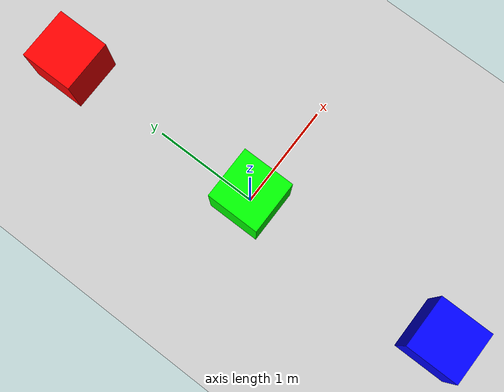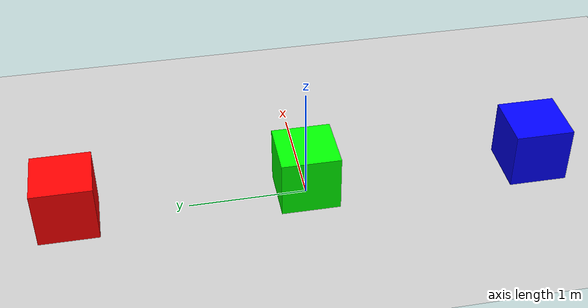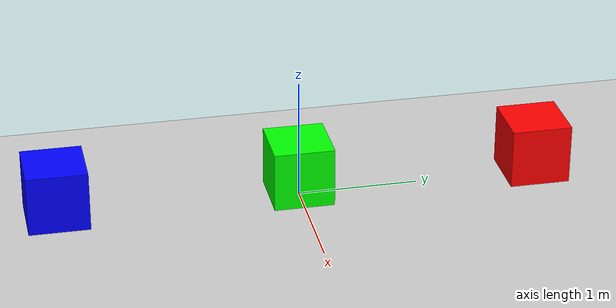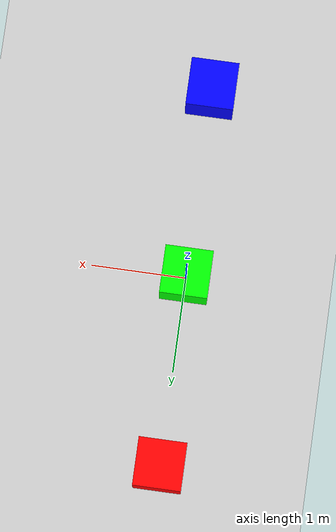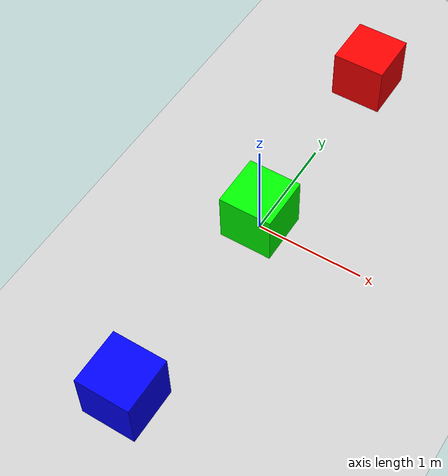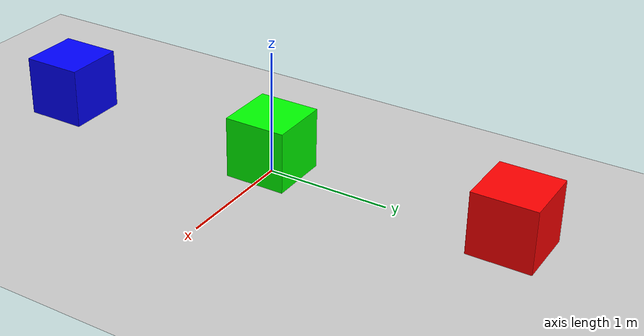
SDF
<?xml version="1.0" ?>

<sdf version="1.6">
  <world name="world_with_boxes">
    <plugin
      filename="gz-sim-physics-system"
      name="gz::sim::systems::Physics">
    </plugin>

    <plugin
      filename="gz-sim-scene-broadcaster-system"
      name="gz::sim::systems::SceneBroadcaster">
    </plugin>

    <model name="box_preupdate">
      <pose>0 2 0.25 0 0 0</pose>

      <link name="link">
        <collision name="collision">
          <geometry>
            <box>
              <size>0.5 0.5 0.5</size>
            </box>
          </geometry>
        </collision>
        <visual name="visual">
          <geometry>
            <box>
              <size>0.5 0.5 0.5</size>
            </box>
          </geometry>
          <material>
            <ambient>1 0 0 1</ambient>
            <diffuse>1 0 0 1</diffuse>
            <specular>1 0 0 1</specular>
          </material>
        </visual>
      </link>
    </model>

    <model name="box_update">
      <pose>0 0 0.25 0 0 0</pose>

      <link name="link">
        <collision name="collision">
          <geometry>
            <box>
              <size>0.5 0.5 0.5</size>
            </box>
          </geometry>
        </collision>
        <visual name="visual">
          <geometry>
            <box>
              <size>0.5 0.5 0.5</size>
            </box>
          </geometry>
          <material>
            <ambient>0 1 0 1</ambient>
            <diffuse>0 1 0 1</diffuse>
            <specular>0 1 0 1</specular>
          </material>
        </visual>
      </link>
    </model>

    <model name="box_postupdate">
      <pose>0 -2 0.25 0 0 0</pose>

      <link name="link">
        <collision name="collision">
          <geometry>
            <box>
              <size>0.5 0.5 0.5</size>
            </box>
          </geometry>
        </collision>
        <visual name="visual">
          <geometry>
            <box>
              <size>0.5 0.5 0.5</size>
            </box>
          </geometry>
          <material>
            <ambient>0 0 1 1</ambient>
            <diffuse>0 0 1 1</diffuse>
            <specular>0 0 1 1</specular>
          </material>
        </visual>
      </link>
    </model>

    <light type="directional" name="sun">
      <cast_shadows>true</cast_shadows>
      <pose>0 0 10 0 0 0</pose>
      <diffuse>1 1 1 1</diffuse>
      <specular>0.5 0.5 0.5 1</specular>
      <attenuation>
        <range>1000</range>
        <constant>0.9</constant>
        <linear>0.01</linear>
        <quadratic>0.001</quadratic>
      </attenuation>
      <direction>-0.5 0.1 -0.9</direction>
    </light>

    <model name="ground_plane">
      <static>true</static>
      <link name="link">
        <collision name="collision">
          <geometry>
            <plane>
              <normal>0 0 1</normal>
              <size>100 100</size>
            </plane>
          </geometry>
        </collision>
        <visual name="visual">
          <geometry>
            <plane>
              <normal>0 0 1</normal>
              <size>100 100</size>
            </plane>
          </geometry>
          <material>
            <ambient>0.8 0.8 0.8 1</ambient>
            <diffuse>0.8 0.8 0.8 1</diffuse>
            <specular>0.8 0.8 0.8 1</specular>
          </material>
        </visual>
      </link>

      <plugin
        filename="RemovePlugin"
        name="gz::sim::systems::RemovePlugin">
        <delay>3</delay>
      </plugin>

    </model>

  </world>
</sdf>
